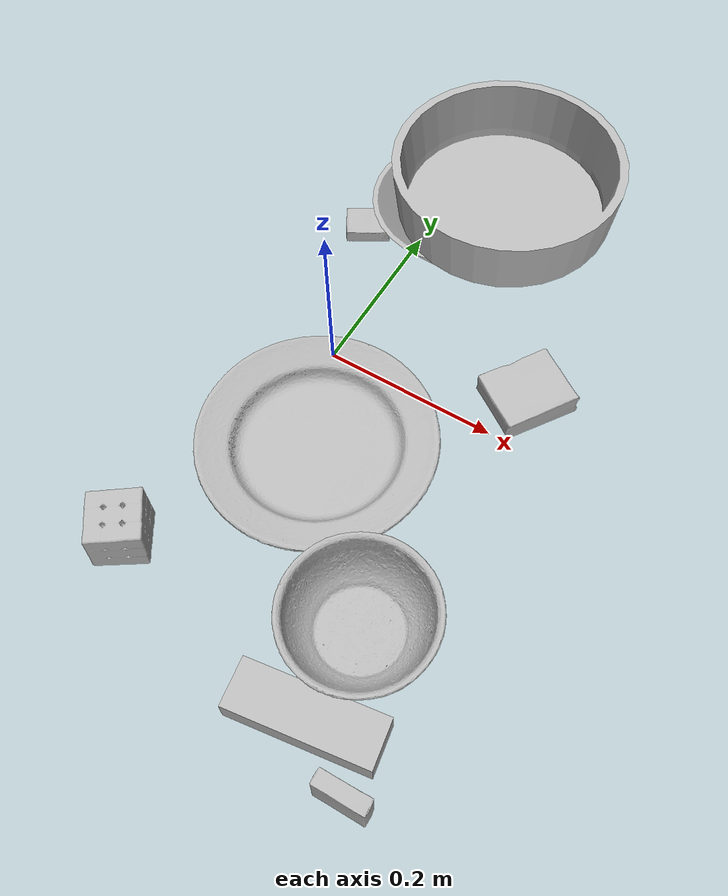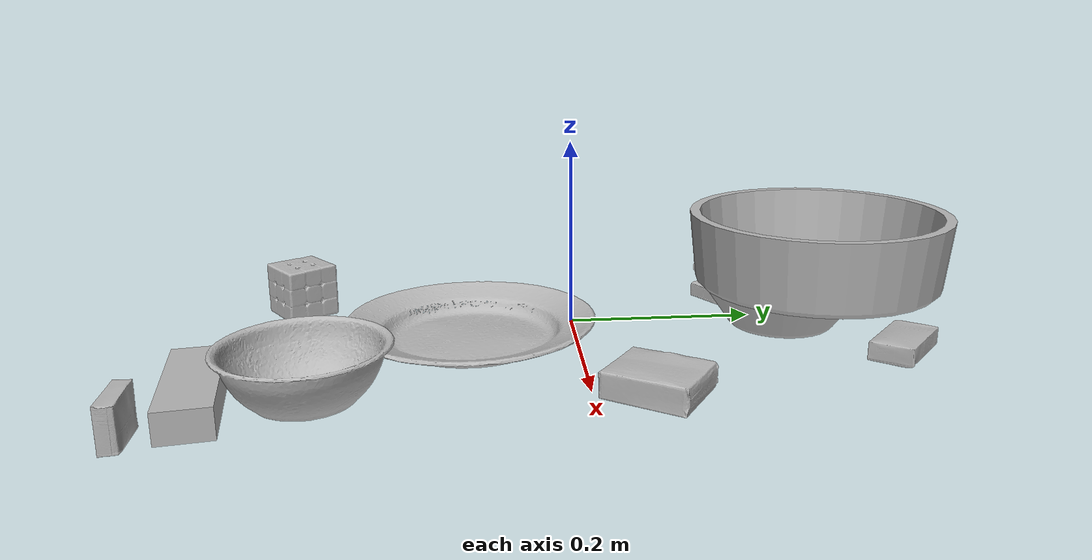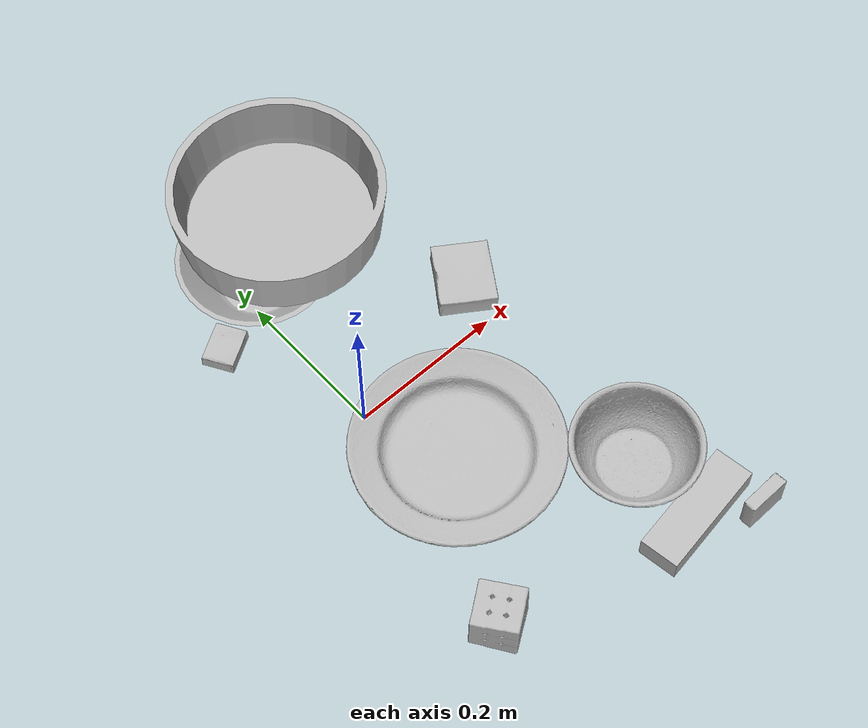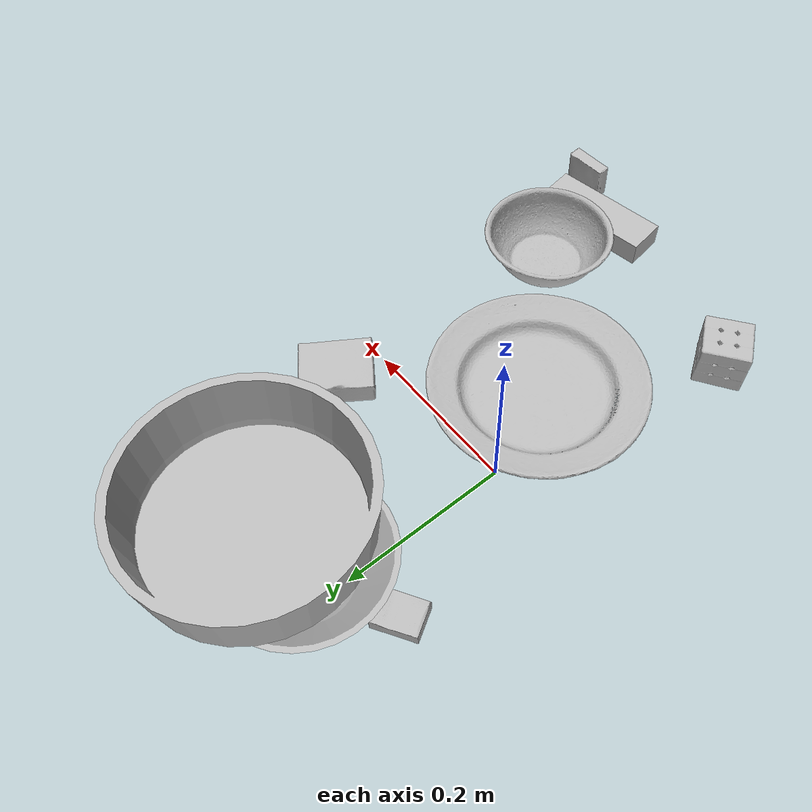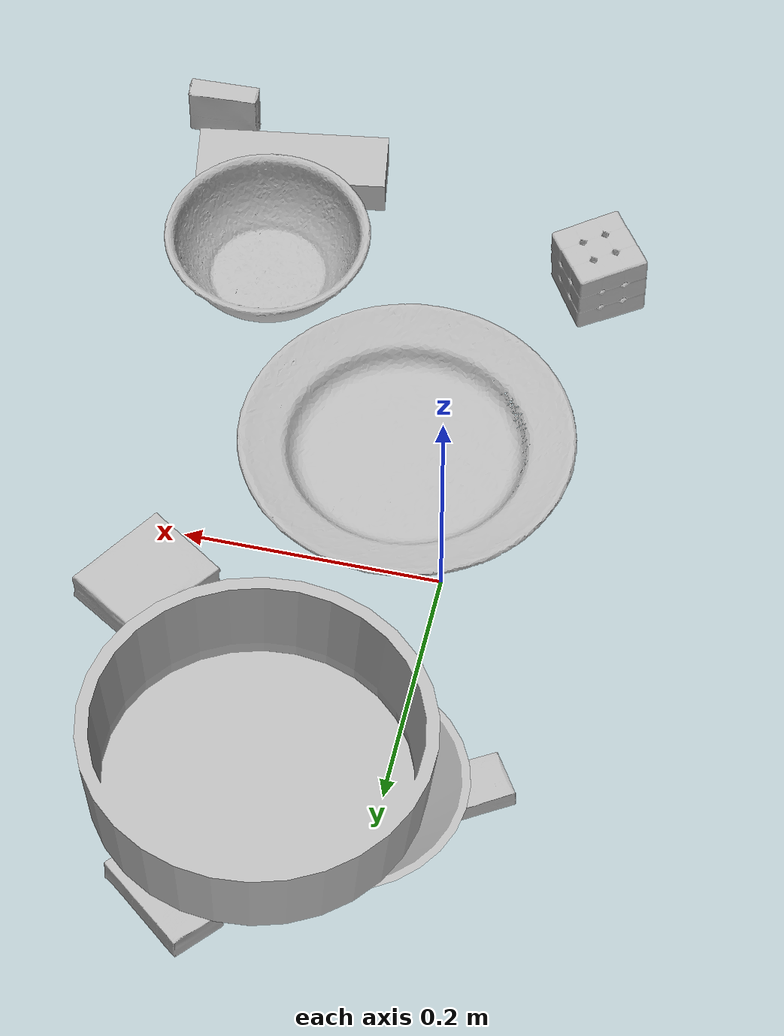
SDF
<sdf version="1.4">
  <world name="default">
    <light name="light1" type="point">
      <pose>0 0 1 0 0 0</pose>
      <diffuse>3 3 3 1</diffuse>
      <specular>3 3 3 1</specular>
    </light>
    <light name="light2" type="point">
      <pose>0 0.5 2 0 0 0</pose>
      <diffuse>1 1 1 1</diffuse>
      <specular>1 1 1 1</specular>
    </light>
    <light name="light3" type="point">
      <pose>0 0.5 2 0 0 0</pose>
      <diffuse>3 3 3 1</diffuse>
      <specular>3 3 3 1</specular>
    </light>
    <scene>
      <ambient>0.7 0.7 0.7</ambient>
    </scene>
    <model name="box1">
      <link name="link_box1">
        <collision name="default">
          <geometry>
            <mesh>
              <uri>model://jenga/collision_meshes/collision.obj</uri>
              <scale>1.0 1.0 1.0</scale>
            </mesh>
          </geometry>
          <surface>
            <friction>
              <ode>
                <mu>0.5</mu>
                <mu2>0.5</mu2>
              </ode>
            </friction>
          <contact>
        <ode>
            <max_vel>0</max_vel>
            <min_depth>0.0001</min_depth>
            <kp>1e8</kp>
        </ode>
    </contact></surface>
        </collision>
        <visual name="default">
          <geometry>
            <mesh>
              <uri>model://jenga/visual_meshes/visual.dae</uri>
              <scale>1.0 1.0 1.0</scale>
            </mesh>
          </geometry>
        </visual>
        <inertial>
          <mass>0.2830650806427002</mass>
          <pose>-2.502855807051674e-07 -0.00010250010382151231 -4.0923401684267446e-05 0.0 -7.34215461761844e-07 0.0</pose>
          <inertia>
            <ixx>7.833097e-05</ixx>
            <iyy>0.0005307686</iyy>
            <izz>0.0005666406</izz>
            <ixy>0</ixy>
            <ixz>0</ixz>
            <iyz>0</iyz>
          </inertia>
        </inertial>
      </link>
      <pose>0.1984495371580124 -0.35499072074890137 0.014999999664723873 7.670695664824823e-09 1.5359381211036482e-09 -2.9873948150161524</pose>
    </model>
    <model name="box11">
      <link name="link_box11">
        <collision name="default">
          <geometry>
            <mesh>
              <uri>model://cracker_box/collision_meshes/collision.obj</uri>
              <scale>0.25 0.25 0.25</scale>
            </mesh>
          </geometry>
          <surface>
            <friction>
              <ode>
                <mu>0.5</mu>
                <mu2>0.5</mu2>
              </ode>
            </friction>
          <contact>
        <ode>
            <max_vel>0</max_vel>
            <min_depth>0.0001</min_depth>
            <kp>1e8</kp>
        </ode>
    </contact></surface>
        </collision>
        <visual name="default">
          <geometry>
            <mesh>
              <uri>model://cracker_box/visual_meshes/visual.dae</uri>
              <scale>0.25 0.25 0.25</scale>
            </mesh>
          </geometry>
        </visual>
        <inertial>
          <mass>0.04137800261378288</mass>
          <pose>0.00023660347505938262 6.358561950037256e-05 -0.0004257383698131889 -0.00031620748486547713 -0.011106488669102847 0.002546795699546287</pose>
          <inertia>
            <ixx>6.577948e-06</ixx>
            <iyy>1.0861484e-05</iyy>
            <izz>1.5500336e-05</izz>
            <ixy>0</ixy>
            <ixz>0</ixz>
            <iyz>0</iyz>
          </inertia>
        </inertial>
      </link>
      <pose>-0.06463614106178284 0.18225066363811493 0.009096026420593262 -0.014050602630443283 -0.005016592719214102 -2.5993069557287423</pose>
    </model>
    <model name="box2">
      <link name="link_box2">
        <collision name="default">
          <geometry>
            <mesh>
              <uri>model://gelatin_box/collision_meshes/collision.obj</uri>
              <scale>1.0 1.0 1.0</scale>
            </mesh>
          </geometry>
          <surface>
            <friction>
              <ode>
                <mu>0.5</mu>
                <mu2>0.5</mu2>
              </ode>
            </friction>
          <contact>
        <ode>
            <max_vel>0</max_vel>
            <min_depth>0.0001</min_depth>
            <kp>1e8</kp>
        </ode>
    </contact></surface>
        </collision>
        <visual name="default">
          <geometry>
            <mesh>
              <uri>model://gelatin_box/visual_meshes/visual.dae</uri>
              <scale>1.0 1.0 1.0</scale>
            </mesh>
          </geometry>
        </visual>
        <inertial>
          <mass>0.22900472581386566</mass>
          <pose>0.000431961816502735 0.00011156871914863586 -0.0003640321083366871 -0.001050372089182411 -0.004755818223717792 0.016440559471606643</pose>
          <inertia>
            <ixx>0.00016165864</ixx>
            <iyy>0.00011547193</iyy>
            <izz>0.00024608054</izz>
            <ixy>0</ixy>
            <ixz>0</ixz>
            <iyz>0</iyz>
          </inertia>
        </inertial>
      </link>
      <pose>0.21502812206745148 0.05918851122260094 0.015168318524956703 0.005597454162291161 -0.007304533368974402 2.542408721212679</pose>
    </model>
    <model name="box21">
      <link name="link_box21">
        <collision name="default">
          <geometry>
            <mesh>
              <uri>model://sugar_box/collision_meshes/collision.obj</uri>
              <scale>0.5 0.5 0.5</scale>
            </mesh>
          </geometry>
          <surface>
            <friction>
              <ode>
                <mu>0.5</mu>
                <mu2>0.5</mu2>
              </ode>
            </friction>
          <contact>
        <ode>
            <max_vel>0</max_vel>
            <min_depth>0.0001</min_depth>
            <kp>1e8</kp>
        </ode>
    </contact></surface>
        </collision>
        <visual name="default">
          <geometry>
            <mesh>
              <uri>model://sugar_box/visual_meshes/visual.dae</uri>
              <scale>0.5 0.5 0.5</scale>
            </mesh>
          </geometry>
        </visual>
        <inertial>
          <mass>0.12271630764007568</mass>
          <pose>0.0005171863595023751 1.924554817378521e-05 -0.00018182404164690524 -0.00040462595111886014 0.0010506636380741379 0.0026153785562511135</pose>
          <inertia>
            <ixx>2.5561721e-05</ixx>
            <iyy>8.262075e-05</iyy>
            <izz>9.890688e-05</izz>
            <ixy>0</ixy>
            <ixz>0</ixz>
            <iyz>0</iyz>
          </inertia>
        </inertial>
      </link>
      <pose>0.1361570507287979 0.3254881203174591 0.011399298906326294 0.0007756657690565875 -0.023433305103352325 -0.6983997383479978</pose>
    </model>
    <model name="box3">
      <link name="link_box3">
        <collision name="default">
          <geometry>
            <mesh>
              <uri>model://rubiks_cube/collision_meshes/collision.obj</uri>
              <scale>1.0 1.0 1.0</scale>
            </mesh>
          </geometry>
          <surface>
            <friction>
              <ode>
                <mu>0.5</mu>
                <mu2>0.5</mu2>
              </ode>
            </friction>
          <contact>
        <ode>
            <max_vel>0</max_vel>
            <min_depth>0.0001</min_depth>
            <kp>1e8</kp>
        </ode>
    </contact></surface>
        </collision>
        <visual name="default">
          <geometry>
            <mesh>
              <uri>model://rubiks_cube/visual_meshes/visual.dae</uri>
              <scale>1.0 1.0 1.0</scale>
            </mesh>
          </geometry>
        </visual>
        <inertial>
          <mass>0.16665811836719513</mass>
          <pose>2.6721039830590598e-05 5.256966323941015e-05 -7.264316082000732e-06 -0.05467166844566422 -0.0981397083583286 -0.034457090447706985</pose>
          <inertia>
            <ixx>9.20898e-05</ixx>
            <iyy>9.166034e-05</iyy>
            <izz>9.285292e-05</izz>
            <ixy>0</ixy>
            <ixz>0</ixz>
            <iyz>0</iyz>
          </inertia>
        </inertial>
      </link>
      <pose>-0.06027604267001152 -0.2992079555988312 0.02867894060909748 -4.8446776429792535e-06 -1.789587530626062e-06 2.190945610435333</pose>
    </model>
    <model name="box31">
      <link name="link_box31">
        <collision name="default">
          <geometry>
            <mesh>
              <uri>model://pudding_box/collision_meshes/collision.obj</uri>
              <scale>0.5 0.5 0.5</scale>
            </mesh>
          </geometry>
          <surface>
            <friction>
              <ode>
                <mu>0.5</mu>
                <mu2>0.5</mu2>
              </ode>
            </friction>
          <contact>
        <ode>
            <max_vel>0</max_vel>
            <min_depth>0.0001</min_depth>
            <kp>1e8</kp>
        </ode>
    </contact></surface>
        </collision>
        <visual name="default">
          <geometry>
            <mesh>
              <uri>model://pudding_box/visual_meshes/visual.dae</uri>
              <scale>0.5 0.5 0.5</scale>
            </mesh>
          </geometry>
        </visual>
        <inertial>
          <mass>0.023591291159391403</mass>
          <pose>0.00024474109522998333 0.00040339428232982755 -0.0002594413817860186 0.00521310040348307 -0.006603797312523218 0.020079827030686108</pose>
          <inertia>
            <ixx>6.667184e-06</ixx>
            <iyy>4.4857293e-06</iyy>
            <izz>9.845841e-06</izz>
            <ixy>0</ixy>
            <ixz>0</ixz>
            <iyz>0</iyz>
          </inertia>
        </inertial>
      </link>
      <pose>0.2637542486190796 -0.3979482054710388 0.02246381714940071 -1.9297613815732313 1.5565325158152854 2.8230755836441195</pose>
    </model>
    <model name="plate1">
      <link name="link_plate1">
        <collision name="default">
          <geometry>
            <mesh>
              <uri>model://plate/collision_meshes/collision.obj</uri>
              <scale>1.0 1.0 1.0</scale>
            </mesh>
          </geometry>
          <surface>
            <friction>
              <ode>
                <mu>0.5</mu>
                <mu2>0.5</mu2>
              </ode>
            </friction>
          <contact>
        <ode>
            <max_vel>0</max_vel>
            <min_depth>0.0001</min_depth>
            <kp>1e8</kp>
        </ode>
    </contact></surface>
        </collision>
        <visual name="default">
          <geometry>
            <mesh>
              <uri>model://plate/visual_meshes/visual.dae</uri>
              <scale>1.0 1.0 1.0</scale>
            </mesh>
          </geometry>
        </visual>
        <inertial>
          <mass>0.2114637792110443</mass>
          <pose>-0.0006044656038284302 0.0002782588708214462 -0.0010561993112787604 0.002218744002621918 -0.003225513006599694 0.45262307488796183</pose>
          <inertia>
            <ixx>0.0009892316</ixx>
            <iyy>0.0009797702</iyy>
            <izz>0.0019347895</izz>
            <ixy>0</ixy>
            <ixz>0</ixz>
            <iyz>0</iyz>
          </inertia>
        </inertial>
      </link>
      <pose>0.05085502937436104 -0.1098792776465416 0.013715135864913464 -4.231586140379659e-05 0.0006077173647261336 1.6545479459327492</pose>
    </model>
    <model name="bowl1">
      <link name="link_bowl1">
        <collision name="default">
          <geometry>
            <mesh>
              <uri>model://bowl_a/collision_meshes/collision.obj</uri>
              <scale>1.0 1.0 1.0</scale>
            </mesh>
          </geometry>
          <surface>
            <friction>
              <ode>
                <mu>0.5</mu>
                <mu2>0.5</mu2>
              </ode>
            </friction>
          <contact>
        <ode>
            <max_vel>0</max_vel>
            <min_depth>0.0001</min_depth>
            <kp>1e8</kp>
        </ode>
    </contact></surface>
        </collision>
        <visual name="default">
          <geometry>
            <mesh>
              <uri>model://bowl_a/visual_meshes/visual.dae</uri>
              <scale>1.0 1.0 1.0</scale>
            </mesh>
          </geometry>
        </visual>
        <inertial>
          <mass>0.48499906063079834</mass>
          <pose>0.00027867438620887697 4.731262743007392e-05 -0.0013765298062935472 -0.0009805334386135593 -0.0010938262367740986 -0.19123808511586568</pose>
          <inertia>
            <ixx>0.0013808149</ixx>
            <iyy>0.0013892918</iyy>
            <izz>0.0024558324</izz>
            <ixy>0</ixy>
            <ixz>0</ixz>
            <iyz>0</iyz>
          </inertia>
        </inertial>
      </link>
      <pose>0.027708405628800392 0.23031432926654816 0.03049728088080883 0.002096014552322981 -0.0003605148144647636 1.6207012594611738</pose>
    </model>
    <model name="plate2">
      <link name="link_plate2">
        <collision name="default">
          <geometry>
            <mesh>
              <uri>model://pan_tefal/collision_meshes/collision.obj</uri>
              <scale>1.0 1.0 1.0</scale>
            </mesh>
          </geometry>
          <surface>
            <friction>
              <ode>
                <mu>0.5</mu>
                <mu2>0.5</mu2>
              </ode>
            </friction>
          <contact>
        <ode>
            <max_vel>0</max_vel>
            <min_depth>0.0001</min_depth>
            <kp>1e8</kp>
        </ode>
    </contact></surface>
        </collision>
        <visual name="default">
          <geometry>
            <mesh>
              <uri>model://pan_tefal/visual_meshes/visual.dae</uri>
              <scale>1.0 1.0 1.0</scale>
            </mesh>
          </geometry>
        </visual>
        <inertial>
          <mass>1.510846495628357</mass>
          <pose>-0.00018002149590756744 3.279069278505631e-05 -0.008514934219419956 0.0008190286460061649 -0.00033014112223844094 -0.3318560039733936</pose>
          <inertia>
            <ixx>0.010429303</ixx>
            <iyy>0.010496541</iyy>
            <izz>0.01919834</izz>
            <ixy>0</ixy>
            <ixz>0</ixz>
            <iyz>0</iyz>
          </inertia>
        </inertial>
      </link>
      <pose>0.08290578424930573 0.24838507175445557 0.09901535511016846 -0.0038252274155734733 0.006314018565984481 2.5989951575245507</pose>
    </model>
    <model name="bowl2">
      <link name="link_bowl2">
        <collision name="default">
          <geometry>
            <mesh>
              <uri>model://bowl/collision_meshes/collision.obj</uri>
              <scale>1.0 1.0 1.0</scale>
            </mesh>
          </geometry>
          <surface>
            <friction>
              <ode>
                <mu>0.5</mu>
                <mu2>0.5</mu2>
              </ode>
            </friction>
          <contact>
        <ode>
            <max_vel>0</max_vel>
            <min_depth>0.0001</min_depth>
            <kp>1e8</kp>
        </ode>
    </contact></surface>
        </collision>
        <visual name="default">
          <geometry>
            <mesh>
              <uri>model://bowl/visual_meshes/visual.dae</uri>
              <scale>1.0 1.0 1.0</scale>
            </mesh>
          </geometry>
        </visual>
        <inertial>
          <mass>0.12714597582817078</mass>
          <pose>0.0002044505235971883 -0.0010302012087777257 -0.0008042659610509872 -0.015764101160635133 0.01454679544325816 0.7140405339594252</pose>
          <inertia>
            <ixx>0.0002920644</ixx>
            <iyy>0.00028553858</iyy>
            <izz>0.0004913528</izz>
            <ixy>0</ixy>
            <ixz>0</ixz>
            <iyz>0</iyz>
          </inertia>
        </inertial>
      </link>
      <pose>0.19557298719882965 -0.25818830728530884 0.02778000198304653 1.6841203094098436e-08 1.1430278362167977e-07 -2.90948605887131</pose>
    </model>
  <physics type="ode">
      <max_contacts>50</max_contacts>
      <ode>
        <solver>
          <type>quick</type>
          <iters>75</iters>
        </solver>
        <constraints>
          <contact_max_correcting_vel>0</contact_max_correcting_vel>
          <contact_surface_layer>0</contact_surface_layer>
        </constraints>
      </ode>
    </physics></world>
</sdf>
